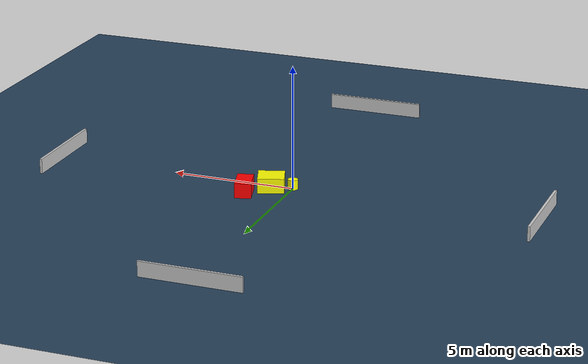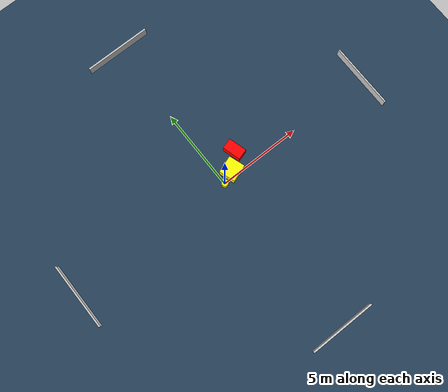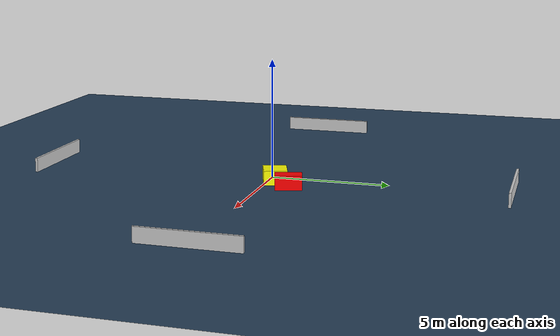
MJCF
<?xml version="1.0" ?>
<mujoco model="generated_environment">
  <option timestep="0.01" integrator="RK4" cone="elliptic"/>
  <default>
    <geom density="1"/>
  </default>
  <asset>
    <texture builtin="gradient" height="3072" name="skybox" rgb1="0.3 0.5 0.7" rgb2="0 0 0" type="skybox" width="512"/>
    <texture builtin="checker" height="300" name="groundplane" rgb1="0.2 0.3 0.4" rgb2="0.1 0.2 0.3" type="2d" width="300"/>
    <material name="groundplane" reflectance="0.2" texrepeat="5 5" texture="groundplane"/>
  </asset>
  <worldbody>
    <light dir="0 0 -1" directional="true" pos="0 0 1.5"/>
    <geom condim="3" friction="0.5 0.005 0.001" material="groundplane" name="floor" pos="0 0 0" size="0 0 0.05" type="plane"/>
    <body name="walls">
      <geom name="wall_1" condim="4" pos="-10.0 0.0 0.3" rgba="0.800000011920929 0.800000011920929 0.800000011920929 1.0" size="0.05 2.0 0.3" type="box"/>
      <geom name="wall_2" condim="4" pos="10.0 0.0 0.3" rgba="0.800000011920929 0.800000011920929 0.800000011920929 1.0" size="0.05 2.0 0.3" type="box"/>
      <geom name="wall_3" condim="4" pos="0.0 -10.0 0.3" rgba="0.800000011920929 0.800000011920929 0.800000011920929 1.0" size="2.0 0.05 0.3" type="box"/>
      <geom name="wall_4" condim="4" pos="0.0 10.0 0.3" rgba="0.800000011920929 0.800000011920929 0.800000011920929 1.0" size="2.0 0.05 0.3" type="box"/>
    </body>
    <body name="robot">
      <joint name="joint_x" type="slide" pos="0 0 0" axis="1 0 0"/>
      <joint name="joint_y" type="slide" pos="0 0 0" axis="0 1 0"/>
      <geom name="robot" type="cylinder" pos="0.0 0.0 0.2" size="0.2 0.2 0.0" mass="5.0" friction="1.0 0.005 0.0001" condim="4" rgba="1.0 1.0 0.0 1.0"/>
    </body>
    <body name="obstacle_1_movable">
      <geom name="obstacle_1_movable" condim="4" pos="0.7721980912867401 0.3535261984482937 0.3" euler="0 0 19.134337160001568" friction="0.0 0.005 0.001" rgba="1.0 1.0 0.0 1.0" size="0.5250093834808989 0.49179974169562807 0.3" type="box" mass="0.1"/>
      <joint type="free"/>
    </body>
    <body name="obstacle_2_static">
      <geom name="obstacle_2_static" condim="4" pos="1.587652483655886 1.1487301385619049 0.3" euler="0 0 105.94920730104573" friction="0.0 0.005 0.001" rgba="1.0 0.0 0.0 1.0" size="0.5573867088218609 0.3230362073814226 0.3" type="box"/>
    </body>
  </worldbody>
  <actuator>
    <motor name="actuator_x" joint="joint_x" gear="1" ctrlrange="-1 1"/>
    <motor name="actuator_y" joint="joint_y" gear="1" ctrlrange="-1 1"/>
  </actuator>
</mujoco>
